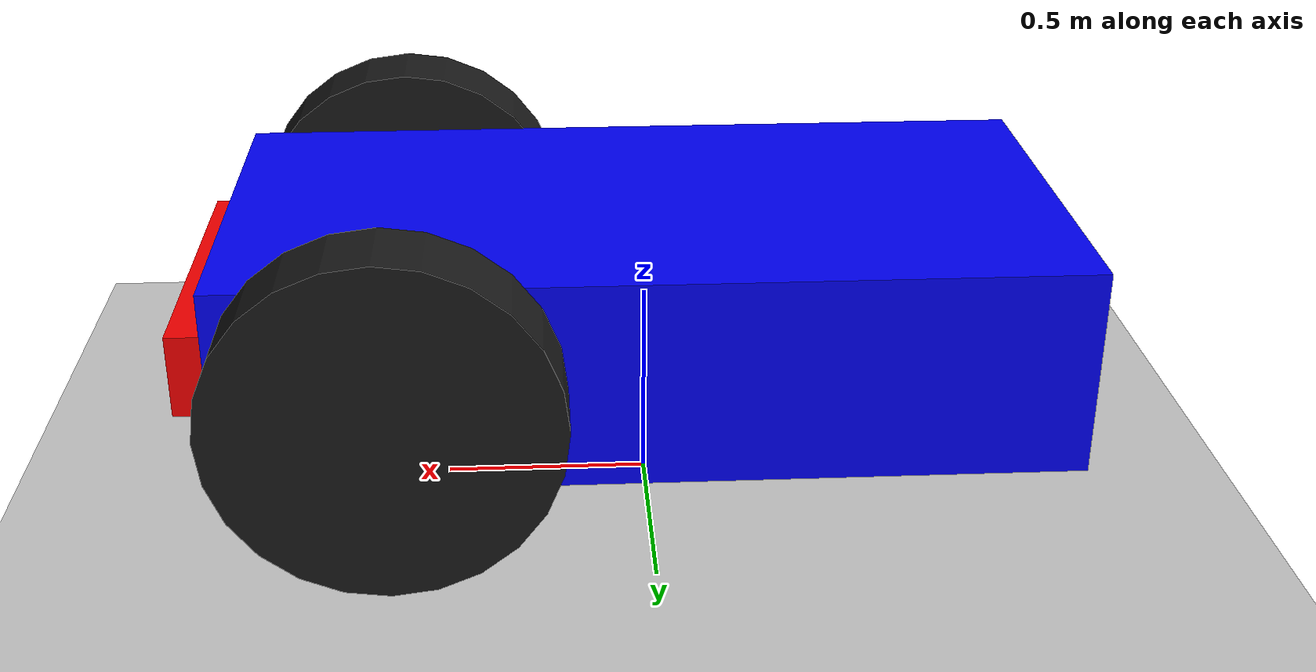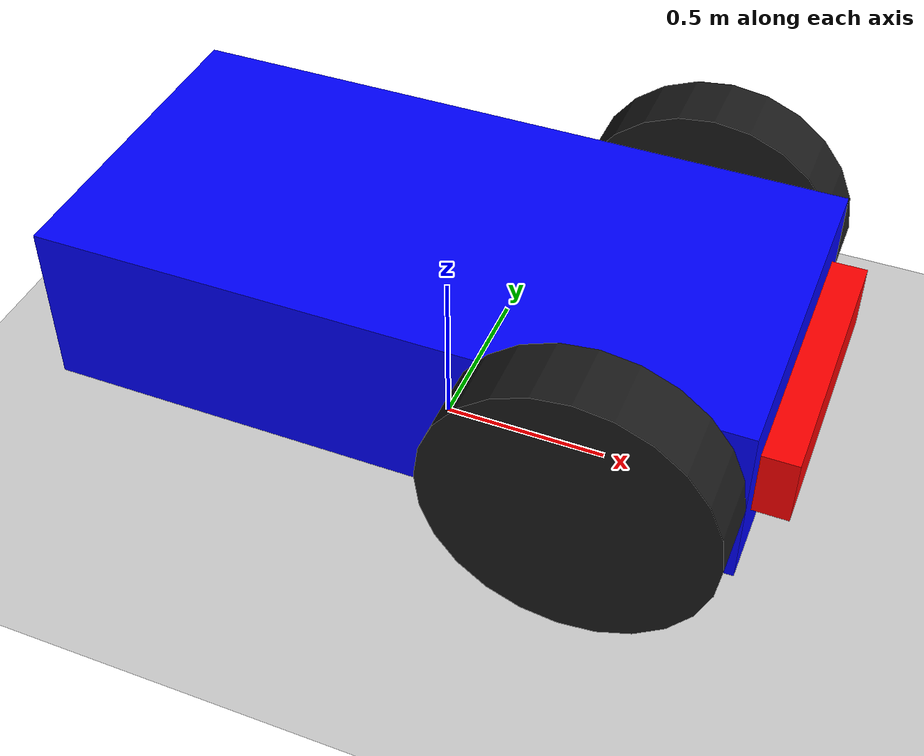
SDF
<?xml version="1.0" ?>
<sdf version="1.8">
    <world name="day9_diff_drive_world">
        <plugin name="gz::sim::systems::Physics" filename="gz-sim-physics-system"/>
        <plugin name="gz::sim::systems::UserCommands" filename="gz-sim-user-commands-system"/>
        <plugin name="gz::sim::systems::SceneBroadcaster" filename="gz-sim-scene-broadcaster-system"/>

        <light type="directional" name="sun">
            <cast_shadows>true</cast_shadows>
            <pose>0 0 10 0 0 0</pose>
            <diffuse>0.8 0.8 0.8 1</diffuse>
            <specular>0.2 0.2 0.2 1</specular>
            <direction>-0.5 0.1 -0.9</direction>
        </light>

        <model name="ground_plane">
            <static>true</static>
            <link name="link">
                <collision name="collision">
                    <geometry>
                        <plane><normal>0 0 1</normal><size>100 100</size></plane>
                    </geometry>
                </collision>
                <visual name="visual">
                    <geometry>
                        <plane><normal>0 0 1</normal><size>100 100</size></plane>
                    </geometry>
                    <material>
                        <ambient>0.8 0.8 0.8 1</ambient>
                        <diffuse>0.8 0.8 0.8 1</diffuse>
                        <specular>0.8 0.8 0.8 1</specular>
                    </material>
                </visual>
            </link>
        </model>

        <model name='simple_car'>
            <pose>0 0 0.5 0 0 0</pose>

            <link name='chassis'>
                <inertial>
                    <mass>6.0</mass>
                    <inertia>
                        <ixx>0.625</ixx><ixy>0</ixy><ixz>0</ixz>
                        <iyy>2.125</iyy><iyz>0</iyz>
                        <izz>2.5</izz>
                    </inertia>
                </inertial>

                <visual name='visual'>
                    <geometry><box><size>2.0 1.0 0.5</size></box></geometry>
                    <material><ambient>0.0 0.0 1.0 1</ambient><diffuse>0.0 0.0 1.0 1</diffuse></material>
                </visual>

                <visual name='front_nose'>
                    <pose>1.0 0 0 0 0 0</pose>
                    <geometry><box><size>0.2 0.8 0.2</size></box></geometry>
                    <material><ambient>1.0 0.0 0.0 1</ambient><diffuse>1.0 0.0 0.0 1</diffuse></material>
                </visual>

                <collision name='collision'>
                    <geometry><box><size>2.0 1.0 0.5</size></box></geometry>
                </collision>
            </link>

            <link name='left_wheel'>
                <pose>0.6 0.6 0 1.5707 0 0</pose>
                <inertial>
                    <mass>1.0</mass>
                    <inertia>
                        <ixx>0.0433</ixx><ixy>0</ixy><ixz>0</ixz>
                        <iyy>0.0433</iyy><iyz>0</iyz>
                        <izz>0.08</izz>
                    </inertia>
                </inertial>
                <visual name='visual'>
                    <geometry><cylinder><radius>0.4</radius><length>0.2</length></cylinder></geometry>
                    <material><ambient>0.1 0.1 0.1 1</ambient><diffuse>0.1 0.1 0.1 1</diffuse></material>
                </visual>
                <collision name='collision'>
                    <geometry><cylinder><radius>0.4</radius><length>0.2</length></cylinder></geometry>
                </collision>
            </link>

            <link name='right_wheel'>
                <pose>0.6 -0.6 0 1.5707 0 0</pose>
                <inertial>
                    <mass>1.0</mass>
                    <inertia>
                        <ixx>0.0433</ixx><ixy>0</ixy><ixz>0</ixz>
                        <iyy>0.0433</iyy><iyz>0</iyz>
                        <izz>0.08</izz>
                    </inertia>
                </inertial>
                <visual name='visual'>
                    <geometry><cylinder><radius>0.4</radius><length>0.2</length></cylinder></geometry>
                    <material><ambient>0.1 0.1 0.1 1</ambient><diffuse>0.1 0.1 0.1 1</diffuse></material>
                </visual>
                <collision name='collision'>
                    <geometry><cylinder><radius>0.4</radius><length>0.2</length></cylinder></geometry>
                </collision>
            </link>

            <link name='caster'>
                <pose>-0.8 0 -0.2 0 0 0</pose>
                <inertial>
                    <mass>1.0</mass>
                    <inertia>
                        <ixx>0.016</ixx><ixy>0</ixy><ixz>0</ixz>
                        <iyy>0.016</iyy><iyz>0</iyz>
                        <izz>0.016</izz>
                    </inertia>
                </inertial>
                <visual name='visual'>
                    <geometry><sphere><radius>0.2</radius></sphere></geometry>
                    <material><ambient>0.5 0.5 0.5 1</ambient><diffuse>0.5 0.5 0.5 1</diffuse></material>
                </visual>
                <collision name='collision'>
                    <geometry><sphere><radius>0.2</radius></sphere></geometry>
                    <surface>
                        <friction>
                            <ode><mu>0.0</mu><mu2>0.0</mu2></ode>
                        </friction>
                    </surface>
                </collision>
            </link>

            <joint name='left_wheel_joint' type='revolute'>
                <parent>chassis</parent>
                <child>left_wheel</child>
                <axis>
                    <xyz>0 0 -1</xyz> <limit><lower>-1e16</lower><upper>1e16</upper></limit>
                </axis>
            </joint>

            <joint name='right_wheel_joint' type='revolute'>
                <parent>chassis</parent>
                <child>right_wheel</child>
                <axis>
                    <xyz>0 0 -1</xyz> <limit><lower>-1e16</lower><upper>1e16</upper></limit>
                </axis>
            </joint>

            <joint name='caster_joint' type='ball'>
                <parent>chassis</parent>
                <child>caster</child>
            </joint>

            <plugin filename="gz-sim-diff-drive-system" name="gz::sim::systems::DiffDrive">
                <left_joint>left_wheel_joint</left_joint>
                <right_joint>right_wheel_joint</right_joint>
                <wheel_separation>1.2</wheel_separation>
                <wheel_radius>0.4</wheel_radius>
                <odom_publish_frequency>50</odom_publish_frequency> <topic>/model/simple_car/cmd_vel</topic>
            </plugin>
        </model>
    </world>
</sdf>
